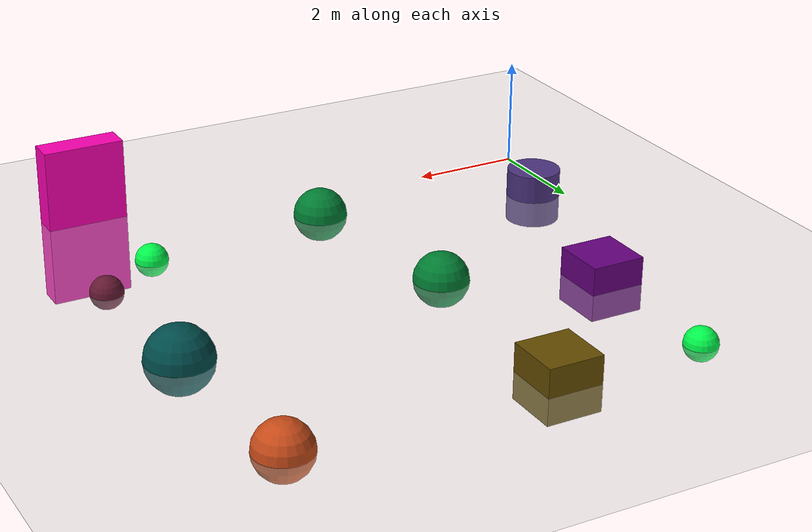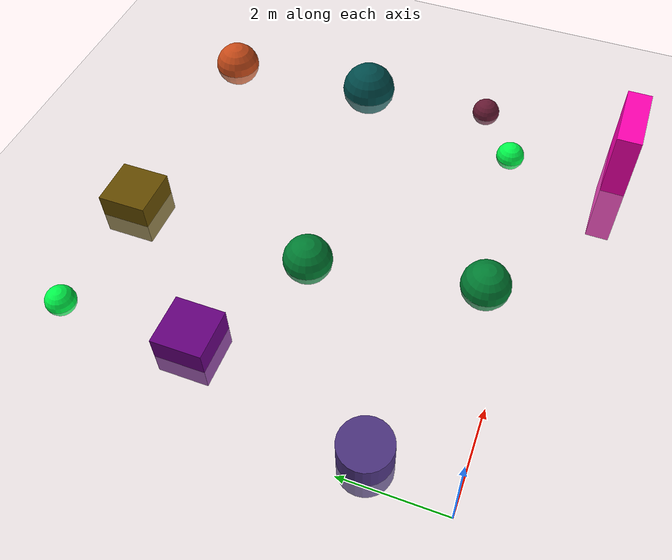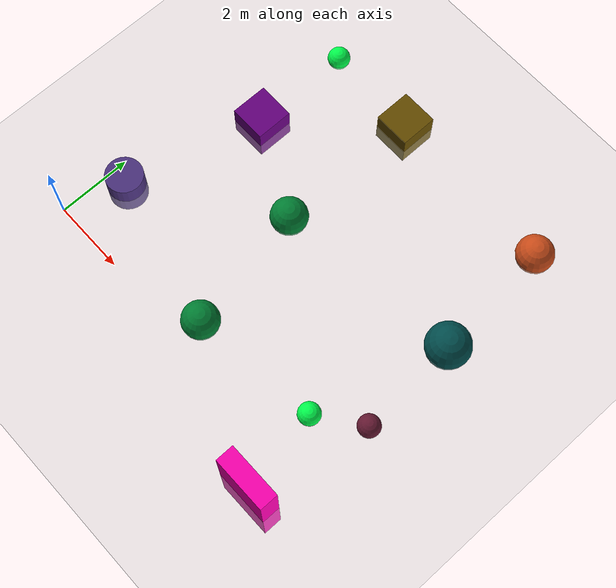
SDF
<sdf version="1.7">
 <world name="default">
  <model name="ground_plane">
   <static>1</static>
   <link name="link">
    <collision name="collision">
     <geometry><plane><normal>0 0 1</normal><size>100 100</size></plane></geometry>
     <surface><friction><ode><mu>100</mu><mu2>50</mu2></ode></friction></surface>
    </collision>
    <visual name="visual">
     <cast_shadows>0</cast_shadows>
     <geometry><plane><normal>0 0 1</normal><size>100 100</size></plane></geometry>
     <material>
      <script><uri>file://media/materials/scripts/gazebo.material</uri><name>Gazebo/Grey</name></script>
     </material>
    </visual>
   </link>
  </model>
  <model name="green_ball">
   <link name="link">
    <inertial>
     <mass>1</mass>
     <inertia><ixx>0.1</ixx><ixy>0</ixy><ixz>0</ixz><iyy>0.1</iyy><iyz>0</iyz><izz>0.1</izz></inertia>
    </inertial>
    <visual name="visual">
     <geometry><sphere><radius>0.3</radius></sphere></geometry>
     <material>
      <script><name>Gazebo/Grey</name><uri>file://media/materials/scripts/gazebo.material</uri></script>
      <shader type="pixel"><normal_map>__default__</normal_map></shader>
      <ambient>0 1 0.3 1</ambient>
      <diffuse>0.7 0.7 0.7 1</diffuse>
      <specular>0.01 0.01 0.01 1</specular>
      <emissive>0 0 0 1</emissive>
     </material>
    </visual>
    <collision name="collision">
     <geometry><sphere><radius>0.3</radius></sphere></geometry>
     <surface>
      <friction>
       <ode><mu>1</mu><mu2>1</mu2><fdir1>0 0 0</fdir1><slip1>0</slip1><slip2>0</slip2></ode>
       <torsional>
        <coefficient>1</coefficient>
        <patch_radius>0</patch_radius>
        <surface_radius>0</surface_radius>
        <use_patch_radius>1</use_patch_radius>
        <ode><slip>0</slip></ode>
       </torsional>
      </friction>
      <bounce><restitution_coefficient>0</restitution_coefficient><threshold>1e+06</threshold></bounce>
      <contact>
       <collide_without_contact>0</collide_without_contact>
       <collide_without_contact_bitmask>1</collide_without_contact_bitmask>
       <collide_bitmask>1</collide_bitmask>
       <ode>
        <soft_cfm>0</soft_cfm>
        <soft_erp>0.2</soft_erp>
        <kp>1e+13</kp>
        <kd>1</kd>
        <max_vel>0.01</max_vel>
        <min_depth>0</min_depth>
       </ode>
       <bullet>
        <split_impulse>1</split_impulse>
        <split_impulse_penetration_threshold>-0.01</split_impulse_penetration_threshold>
        <soft_cfm>0</soft_cfm>
        <soft_erp>0.2</soft_erp>
        <kp>1e+13</kp>
        <kd>1</kd>
       </bullet>
      </contact>
     </surface>
    </collision>
   </link>
   <static>0</static>
   <pose>1.43891 8.11053 0 0 -0 0</pose>
  </model>
  <model name="skin_primastic">
   <link name="link">
    <inertial>
     <mass>1</mass>
     <inertia><ixx>0.145833</ixx><ixy>0</ixy><ixz>0</ixz><iyy>0.145833</iyy><iyz>0</iyz><izz>0.125</izz></inertia>
    </inertial>
    <visual name="visual">
     <geometry><cylinder><radius>0.5</radius><length>1</length></cylinder></geometry>
     <material>
      <script><name>Gazebo/Grey</name><uri>file://media/materials/scripts/gazebo.material</uri></script>
      <shader type="pixel"><normal_map>__default__</normal_map></shader>
      <ambient>0.3 0.2 0.5 0</ambient>
      <diffuse>0.7 0.7 0.7 1</diffuse>
      <specular>0.01 0.01 0.01 1</specular>
      <emissive>0 0 0 1</emissive>
     </material>
    </visual>
    <collision name="collision">
     <geometry><cylinder><radius>0.5</radius><length>1</length></cylinder></geometry>
     <surface>
      <friction>
       <ode><mu>1</mu><mu2>1</mu2><fdir1>0 0 0</fdir1><slip1>0</slip1><slip2>0</slip2></ode>
       <torsional>
        <coefficient>1</coefficient>
        <patch_radius>0</patch_radius>
        <surface_radius>0</surface_radius>
        <use_patch_radius>1</use_patch_radius>
        <ode><slip>0</slip></ode>
       </torsional>
      </friction>
      <bounce><restitution_coefficient>0</restitution_coefficient><threshold>1e+06</threshold></bounce>
      <contact>
       <collide_without_contact>0</collide_without_contact>
       <collide_without_contact_bitmask>1</collide_without_contact_bitmask>
       <collide_bitmask>1</collide_bitmask>
       <ode>
        <soft_cfm>0</soft_cfm>
        <soft_erp>0.2</soft_erp>
        <kp>1e+13</kp>
        <kd>1</kd>
        <max_vel>0.01</max_vel>
        <min_depth>0</min_depth>
       </ode>
       <bullet>
        <split_impulse>1</split_impulse>
        <split_impulse_penetration_threshold>-0.01</split_impulse_penetration_threshold>
        <soft_cfm>0</soft_cfm>
        <soft_erp>0.2</soft_erp>
        <kp>1e+13</kp>
        <kd>1</kd>
       </bullet>
      </contact>
     </surface>
    </collision>
   </link>
   <static>0</static>
   <pose>0.491433 1.64159 0 0 -0 0</pose>
  </model>
  <model name="unit_box_122">
   <link name="link">
    <inertial>
     <mass>1</mass>
     <inertia>
      <ixx>0.166667</ixx>
      <ixy>0</ixy>
      <ixz>0</ixz>
      <iyy>0.166667</iyy>
      <iyz>0</iyz>
      <izz>0.166667</izz>
     </inertia>
    </inertial>
    <visual name="visual">
     <geometry><box><size>1 1 1</size></box></geometry>
     <material>
      <script><name>Gazebo/Grey</name><uri>file://media/materials/scripts/gazebo.material</uri></script>
      <shader type="pixel"><normal_map>__default__</normal_map></shader>
      <ambient>0.4 0 0.5 0</ambient>
      <diffuse>0.7 0.7 0.7 1</diffuse>
      <specular>0.01 0.01 0.01 1</specular>
      <emissive>0 0 0 1</emissive>
     </material>
    </visual>
    <collision name="collision">
     <geometry><box><size>1 1 1</size></box></geometry>
     <surface>
      <friction>
       <ode><mu>1</mu><mu2>1</mu2><fdir1>0 0 0</fdir1><slip1>0</slip1><slip2>0</slip2></ode>
       <torsional>
        <coefficient>1</coefficient>
        <patch_radius>0</patch_radius>
        <surface_radius>0</surface_radius>
        <use_patch_radius>1</use_patch_radius>
        <ode><slip>0</slip></ode>
       </torsional>
      </friction>
      <bounce><restitution_coefficient>0</restitution_coefficient><threshold>1e+06</threshold></bounce>
      <contact>
       <collide_without_contact>0</collide_without_contact>
       <collide_without_contact_bitmask>1</collide_without_contact_bitmask>
       <collide_bitmask>1</collide_bitmask>
       <ode>
        <soft_cfm>0</soft_cfm>
        <soft_erp>0.2</soft_erp>
        <kp>1e+13</kp>
        <kd>1</kd>
        <max_vel>0.01</max_vel>
        <min_depth>0</min_depth>
       </ode>
       <bullet>
        <split_impulse>1</split_impulse>
        <split_impulse_penetration_threshold>-0.01</split_impulse_penetration_threshold>
        <soft_cfm>0</soft_cfm>
        <soft_erp>0.2</soft_erp>
        <kp>1e+13</kp>
        <kd>1</kd>
       </bullet>
      </contact>
     </surface>
    </collision>
   </link>
   <static>0</static>
   <pose>1.48717 5.36143 0 0 -0 0</pose>
  </model>
  <model name="unit_box_022">
   <link name="link">
    <inertial>
     <mass>1</mass>
     <inertia>
      <ixx>0.166667</ixx>
      <ixy>0</ixy>
      <ixz>0</ixz>
      <iyy>0.166667</iyy>
      <iyz>0</iyz>
      <izz>0.166667</izz>
     </inertia>
    </inertial>
    <visual name="visual">
     <geometry><box><size>1 1 1</size></box></geometry>
     <material>
      <script><name>Gazebo/Grey</name><uri>file://media/materials/scripts/gazebo.material</uri></script>
      <shader type="pixel"><normal_map>__default__</normal_map></shader>
      <ambient>0.4 0.3 0 0</ambient>
      <diffuse>0.7 0.7 0.7 1</diffuse>
      <specular>0.01 0.01 0.01 1</specular>
      <emissive>0 0 0 1</emissive>
     </material>
    </visual>
    <collision name="collision">
     <geometry><box><size>1 1 1</size></box></geometry>
     <surface>
      <friction>
       <ode><mu>1</mu><mu2>1</mu2><fdir1>0 0 0</fdir1><slip1>0</slip1><slip2>0</slip2></ode>
       <torsional>
        <coefficient>1</coefficient>
        <patch_radius>0</patch_radius>
        <surface_radius>0</surface_radius>
        <use_patch_radius>1</use_patch_radius>
        <ode><slip>0</slip></ode>
       </torsional>
      </friction>
      <bounce><restitution_coefficient>0</restitution_coefficient><threshold>1e+06</threshold></bounce>
      <contact>
       <collide_without_contact>0</collide_without_contact>
       <collide_without_contact_bitmask>1</collide_without_contact_bitmask>
       <collide_bitmask>1</collide_bitmask>
       <ode>
        <soft_cfm>0</soft_cfm>
        <soft_erp>0.2</soft_erp>
        <kp>1e+13</kp>
        <kd>1</kd>
        <max_vel>0.01</max_vel>
        <min_depth>0</min_depth>
       </ode>
       <bullet>
        <split_impulse>1</split_impulse>
        <split_impulse_penetration_threshold>-0.01</split_impulse_penetration_threshold>
        <soft_cfm>0</soft_cfm>
        <soft_erp>0.2</soft_erp>
        <kp>1e+13</kp>
        <kd>1</kd>
       </bullet>
      </contact>
     </surface>
    </collision>
   </link>
   <static>0</static>
   <pose>4.08875 7.95818 0 0 -0 0</pose>
  </model>
  <model name="unit_sphere000">
   <link name="link">
    <inertial>
     <mass>1</mass>
     <inertia><ixx>0.1</ixx><ixy>0</ixy><ixz>0</ixz><iyy>0.1</iyy><iyz>0</iyz><izz>0.1</izz></inertia>
    </inertial>
    <visual name="visual">
     <geometry><sphere><radius>0.5</radius></sphere></geometry>
     <material>
      <script><name>Gazebo/Grey</name><uri>file://media/materials/scripts/gazebo.material</uri></script>
      <shader type="pixel"><normal_map>__default__</normal_map></shader>
      <ambient>0.8 0.3 0.1 0</ambient>
      <diffuse>0.7 0.7 0.7 1</diffuse>
      <specular>0.01 0.01 0.01 1</specular>
      <emissive>0 0 0 1</emissive>
     </material>
    </visual>
    <collision name="collision">
     <geometry><sphere><radius>0.5</radius></sphere></geometry>
     <surface>
      <friction>
       <ode><mu>1</mu><mu2>1</mu2><fdir1>0 0 0</fdir1><slip1>0</slip1><slip2>0</slip2></ode>
       <torsional>
        <coefficient>1</coefficient>
        <patch_radius>0</patch_radius>
        <surface_radius>0</surface_radius>
        <use_patch_radius>1</use_patch_radius>
        <ode><slip>0</slip></ode>
       </torsional>
      </friction>
      <bounce><restitution_coefficient>0</restitution_coefficient><threshold>1e+06</threshold></bounce>
      <contact>
       <collide_without_contact>0</collide_without_contact>
       <collide_without_contact_bitmask>1</collide_without_contact_bitmask>
       <collide_bitmask>1</collide_bitmask>
       <ode>
        <soft_cfm>0</soft_cfm>
        <soft_erp>0.2</soft_erp>
        <kp>1e+13</kp>
        <kd>1</kd>
        <max_vel>0.01</max_vel>
        <min_depth>0</min_depth>
       </ode>
       <bullet>
        <split_impulse>1</split_impulse>
        <split_impulse_penetration_threshold>-0.01</split_impulse_penetration_threshold>
        <soft_cfm>0</soft_cfm>
        <soft_erp>0.2</soft_erp>
        <kp>1e+13</kp>
        <kd>1</kd>
       </bullet>
      </contact>
     </surface>
    </collision>
   </link>
   <static>0</static>
   <pose>8.8205 7.91718 0 0 -0 0</pose>
  </model>
  <model name="unit_sphere_044">
   <link name="link">
    <inertial>
     <mass>1</mass>
     <inertia><ixx>0.1</ixx><ixy>0</ixy><ixz>0</ixz><iyy>0.1</iyy><iyz>0</iyz><izz>0.1</izz></inertia>
    </inertial>
    <visual name="visual">
     <geometry><sphere><radius>0.5</radius></sphere></geometry>
     <material>
      <script><name>Gazebo/Grey</name><uri>file://media/materials/scripts/gazebo.material</uri></script>
      <shader type="pixel"><normal_map>__default__</normal_map></shader>
      <ambient>0 0.5 0.2 0</ambient>
      <diffuse>0.7 0.7 0.7 1</diffuse>
      <specular>0.01 0.01 0.01 1</specular>
      <emissive>0 0 0 1</emissive>
     </material>
    </visual>
    <collision name="collision">
     <geometry><sphere><radius>0.5</radius></sphere></geometry>
     <surface>
      <friction>
       <ode><mu>1</mu><mu2>1</mu2><fdir1>0 0 0</fdir1><slip1>0</slip1><slip2>0</slip2></ode>
       <torsional>
        <coefficient>1</coefficient>
        <patch_radius>0</patch_radius>
        <surface_radius>0</surface_radius>
        <use_patch_radius>1</use_patch_radius>
        <ode><slip>0</slip></ode>
       </torsional>
      </friction>
      <bounce><restitution_coefficient>0</restitution_coefficient><threshold>1e+06</threshold></bounce>
      <contact>
       <collide_without_contact>0</collide_without_contact>
       <collide_without_contact_bitmask>1</collide_without_contact_bitmask>
       <collide_bitmask>1</collide_bitmask>
       <ode>
        <soft_cfm>0</soft_cfm>
        <soft_erp>0.2</soft_erp>
        <kp>1e+13</kp>
        <kd>1</kd>
        <max_vel>0.01</max_vel>
        <min_depth>0</min_depth>
       </ode>
       <bullet>
        <split_impulse>1</split_impulse>
        <split_impulse_penetration_threshold>-0.01</split_impulse_penetration_threshold>
        <soft_cfm>0</soft_cfm>
        <soft_erp>0.2</soft_erp>
        <kp>1e+13</kp>
        <kd>1</kd>
       </bullet>
      </contact>
     </surface>
    </collision>
   </link>
   <static>0</static>
   <pose>3.94276 4.09209 0 0 -0 0</pose>
  </model>
  <model name="unit_sphere777_0">
   <link name="link">
    <inertial>
     <mass>1</mass>
     <inertia><ixx>0.1</ixx><ixy>0</ixy><ixz>0</ixz><iyy>0.1</iyy><iyz>0</iyz><izz>0.1</izz></inertia>
    </inertial>
    <visual name="visual">
     <geometry><sphere><radius>0.3</radius></sphere></geometry>
     <material>
      <script><name>Gazebo/Grey</name><uri>file://media/materials/scripts/gazebo.material</uri></script>
      <shader type="pixel"><normal_map>__default__</normal_map></shader>
      <ambient>0.4 0.1 0.2 0</ambient>
      <diffuse>0.7 0.7 0.7 1</diffuse>
      <specular>0.01 0.01 0.01 1</specular>
      <emissive>0 0 0 1</emissive>
     </material>
    </visual>
    <collision name="collision">
     <geometry><sphere><radius>0.3</radius></sphere></geometry>
     <surface>
      <friction>
       <ode><mu>1</mu><mu2>1</mu2><fdir1>0 0 0</fdir1><slip1>0</slip1><slip2>0</slip2></ode>
       <torsional>
        <coefficient>1</coefficient>
        <patch_radius>0</patch_radius>
        <surface_radius>0</surface_radius>
        <use_patch_radius>1</use_patch_radius>
        <ode><slip>0</slip></ode>
       </torsional>
      </friction>
      <bounce><restitution_coefficient>0</restitution_coefficient><threshold>1e+06</threshold></bounce>
      <contact>
       <collide_without_contact>0</collide_without_contact>
       <collide_without_contact_bitmask>1</collide_without_contact_bitmask>
       <collide_bitmask>1</collide_bitmask>
       <ode>
        <soft_cfm>0</soft_cfm>
        <soft_erp>0.2</soft_erp>
        <kp>1e+13</kp>
        <kd>1</kd>
        <max_vel>0.01</max_vel>
        <min_depth>0</min_depth>
       </ode>
       <bullet>
        <split_impulse>1</split_impulse>
        <split_impulse_penetration_threshold>-0.01</split_impulse_penetration_threshold>
        <soft_cfm>0</soft_cfm>
        <soft_erp>0.2</soft_erp>
        <kp>1e+13</kp>
        <kd>1</kd>
       </bullet>
      </contact>
     </surface>
    </collision>
   </link>
   <static>0</static>
   <pose>9.23453 1.87217 0 0 -0 0</pose>
  </model>
  <model name="unit_sphere_1">
   <link name="link">
    <inertial>
     <mass>1</mass>
     <inertia><ixx>0.1</ixx><ixy>0</ixy><ixz>0</ixz><iyy>0.1</iyy><iyz>0</iyz><izz>0.1</izz></inertia>
    </inertial>
    <visual name="visual">
     <geometry><sphere><radius>0.6</radius></sphere></geometry>
     <material>
      <script><name>Gazebo/Grey</name><uri>file://media/materials/scripts/gazebo.material</uri></script>
      <shader type="pixel"><normal_map>__default__</normal_map></shader>
      <ambient>0 0.3 0.3 1</ambient>
      <diffuse>0.7 0.7 0.7 1</diffuse>
      <specular>0.01 0.01 0.01 1</specular>
      <emissive>0 0 0 1</emissive>
     </material>
    </visual>
    <collision name="collision">
     <geometry><sphere><radius>0.6</radius></sphere></geometry>
     <surface>
      <friction>
       <ode><mu>1</mu><mu2>1</mu2><fdir1>0 0 0</fdir1><slip1>0</slip1><slip2>0</slip2></ode>
       <torsional>
        <coefficient>1</coefficient>
        <patch_radius>0</patch_radius>
        <surface_radius>0</surface_radius>
        <use_patch_radius>1</use_patch_radius>
        <ode><slip>0</slip></ode>
       </torsional>
      </friction>
      <bounce><restitution_coefficient>0</restitution_coefficient><threshold>1e+06</threshold></bounce>
      <contact>
       <collide_without_contact>0</collide_without_contact>
       <collide_without_contact_bitmask>1</collide_without_contact_bitmask>
       <collide_bitmask>1</collide_bitmask>
       <ode>
        <soft_cfm>0</soft_cfm>
        <soft_erp>0.2</soft_erp>
        <kp>1e+13</kp>
        <kd>1</kd>
        <max_vel>0.01</max_vel>
        <min_depth>0</min_depth>
       </ode>
       <bullet>
        <split_impulse>1</split_impulse>
        <split_impulse_penetration_threshold>-0.01</split_impulse_penetration_threshold>
        <soft_cfm>0</soft_cfm>
        <soft_erp>0.2</soft_erp>
        <kp>1e+13</kp>
        <kd>1</kd>
       </bullet>
      </contact>
     </surface>
    </collision>
   </link>
   <static>0</static>
   <pose>9.07052 4.65306 0 0 -0 0</pose>
  </model>
  <model name="unit_sphere_044_0">
   <link name="link">
    <inertial>
     <mass>1</mass>
     <inertia><ixx>0.1</ixx><ixy>0</ixy><ixz>0</ixz><iyy>0.1</iyy><iyz>0</iyz><izz>0.1</izz></inertia>
    </inertial>
    <visual name="visual">
     <geometry><sphere><radius>0.5</radius></sphere></geometry>
     <material>
      <script><name>Gazebo/Grey</name><uri>file://media/materials/scripts/gazebo.material</uri></script>
      <shader type="pixel"><normal_map>__default__</normal_map></shader>
      <ambient>0 0.5 0.2 0</ambient>
      <diffuse>0.7 0.7 0.7 1</diffuse>
      <specular>0.01 0.01 0.01 1</specular>
      <emissive>0 0 0 1</emissive>
     </material>
    </visual>
    <collision name="collision">
     <geometry><sphere><radius>0.5</radius></sphere></geometry>
     <surface>
      <friction>
       <ode><mu>1</mu><mu2>1</mu2><fdir1>0 0 0</fdir1><slip1>0</slip1><slip2>0</slip2></ode>
       <torsional>
        <coefficient>1</coefficient>
        <patch_radius>0</patch_radius>
        <surface_radius>0</surface_radius>
        <use_patch_radius>1</use_patch_radius>
        <ode><slip>0</slip></ode>
       </torsional>
      </friction>
      <bounce><restitution_coefficient>0</restitution_coefficient><threshold>1e+06</threshold></bounce>
      <contact>
       <collide_without_contact>0</collide_without_contact>
       <collide_without_contact_bitmask>1</collide_without_contact_bitmask>
       <collide_bitmask>1</collide_bitmask>
       <ode>
        <soft_cfm>0</soft_cfm>
        <soft_erp>0.2</soft_erp>
        <kp>1e+13</kp>
        <kd>1</kd>
        <max_vel>0.01</max_vel>
        <min_depth>0</min_depth>
       </ode>
       <bullet>
        <split_impulse>1</split_impulse>
        <split_impulse_penetration_threshold>-0.01</split_impulse_penetration_threshold>
        <soft_cfm>0</soft_cfm>
        <soft_erp>0.2</soft_erp>
        <kp>1e+13</kp>
        <kd>1</kd>
       </bullet>
      </contact>
     </surface>
    </collision>
   </link>
   <static>0</static>
   <pose>4.54411 0.647677 0 0 -0 0</pose>
  </model>
  <model name="green_ball_0">
   <link name="link">
    <inertial>
     <mass>1</mass>
     <inertia><ixx>0.1</ixx><ixy>0</ixy><ixz>0</ixz><iyy>0.1</iyy><iyz>0</iyz><izz>0.1</izz></inertia>
    </inertial>
    <visual name="visual">
     <geometry><sphere><radius>0.3</radius></sphere></geometry>
     <material>
      <script><name>Gazebo/Grey</name><uri>file://media/materials/scripts/gazebo.material</uri></script>
      <shader type="pixel"><normal_map>__default__</normal_map></shader>
      <ambient>0 1 0.3 1</ambient>
      <diffuse>0.7 0.7 0.7 1</diffuse>
      <specular>0.01 0.01 0.01 1</specular>
      <emissive>0 0 0 1</emissive>
     </material>
    </visual>
    <collision name="collision">
     <geometry><sphere><radius>0.3</radius></sphere></geometry>
     <surface>
      <friction>
       <ode><mu>1</mu><mu2>1</mu2><fdir1>0 0 0</fdir1><slip1>0</slip1><slip2>0</slip2></ode>
       <torsional>
        <coefficient>1</coefficient>
        <patch_radius>0</patch_radius>
        <surface_radius>0</surface_radius>
        <use_patch_radius>1</use_patch_radius>
        <ode><slip>0</slip></ode>
       </torsional>
      </friction>
      <bounce><restitution_coefficient>0</restitution_coefficient><threshold>1e+06</threshold></bounce>
      <contact>
       <collide_without_contact>0</collide_without_contact>
       <collide_without_contact_bitmask>1</collide_without_contact_bitmask>
       <collide_bitmask>1</collide_bitmask>
       <ode>
        <soft_cfm>0</soft_cfm>
        <soft_erp>0.2</soft_erp>
        <kp>1e+13</kp>
        <kd>1</kd>
        <max_vel>0.01</max_vel>
        <min_depth>0</min_depth>
       </ode>
       <bullet>
        <split_impulse>1</split_impulse>
        <split_impulse_penetration_threshold>-0.01</split_impulse_penetration_threshold>
        <soft_cfm>0</soft_cfm>
        <soft_erp>0.2</soft_erp>
        <kp>1e+13</kp>
        <kd>1</kd>
       </bullet>
      </contact>
     </surface>
    </collision>
   </link>
   <static>0</static>
   <pose>8.06674 1.02501 0 0 -0 0</pose>
  </model>
  <model name="pink_box">
   <link name="link">
    <inertial>
     <mass>1</mass>
     <inertia>
      <ixx>0.166667</ixx>
      <ixy>0</ixy>
      <ixz>0</ixz>
      <iyy>0.166667</iyy>
      <iyz>0</iyz>
      <izz>0.166667</izz>
     </inertia>
    </inertial>
    <visual name="visual">
     <geometry><box><size>1.5 0.5 3</size></box></geometry>
     <material>
      <script><name>Gazebo/Grey</name><uri>file://media/materials/scripts/gazebo.material</uri></script>
      <shader type="pixel"><normal_map>__default__</normal_map></shader>
      <ambient>1 0.1 0.8 0.7</ambient>
      <diffuse>1 0 0.7 1</diffuse>
      <specular>0.01 0.11 0.01 1</specular>
      <emissive>0 0 0 1</emissive>
     </material>
    </visual>
    <collision name="collision">
     <geometry><box><size>1.5 0.5 3</size></box></geometry>
     <surface>
      <friction>
       <ode><mu>1</mu><mu2>1</mu2><fdir1>0 0 0</fdir1><slip1>0</slip1><slip2>0</slip2></ode>
       <torsional>
        <coefficient>1</coefficient>
        <patch_radius>0</patch_radius>
        <surface_radius>0</surface_radius>
        <use_patch_radius>1</use_patch_radius>
        <ode><slip>0</slip></ode>
       </torsional>
      </friction>
      <bounce><restitution_coefficient>0</restitution_coefficient><threshold>1e+06</threshold></bounce>
      <contact>
       <collide_without_contact>0</collide_without_contact>
       <collide_without_contact_bitmask>1</collide_without_contact_bitmask>
       <collide_bitmask>1</collide_bitmask>
       <ode>
        <soft_cfm>0</soft_cfm>
        <soft_erp>0.2</soft_erp>
        <kp>1e+13</kp>
        <kd>1</kd>
        <max_vel>0.01</max_vel>
        <min_depth>0</min_depth>
       </ode>
       <bullet>
        <split_impulse>1</split_impulse>
        <split_impulse_penetration_threshold>-0.01</split_impulse_penetration_threshold>
        <soft_cfm>0</soft_cfm>
        <soft_erp>0.2</soft_erp>
        <kp>1e+13</kp>
        <kd>1</kd>
       </bullet>
      </contact>
     </surface>
    </collision>
   </link>
   <static>0</static>
   <pose>8.49684 -1.2348 0 0 -0 0</pose>
  </model>
 </world>
</sdf>
